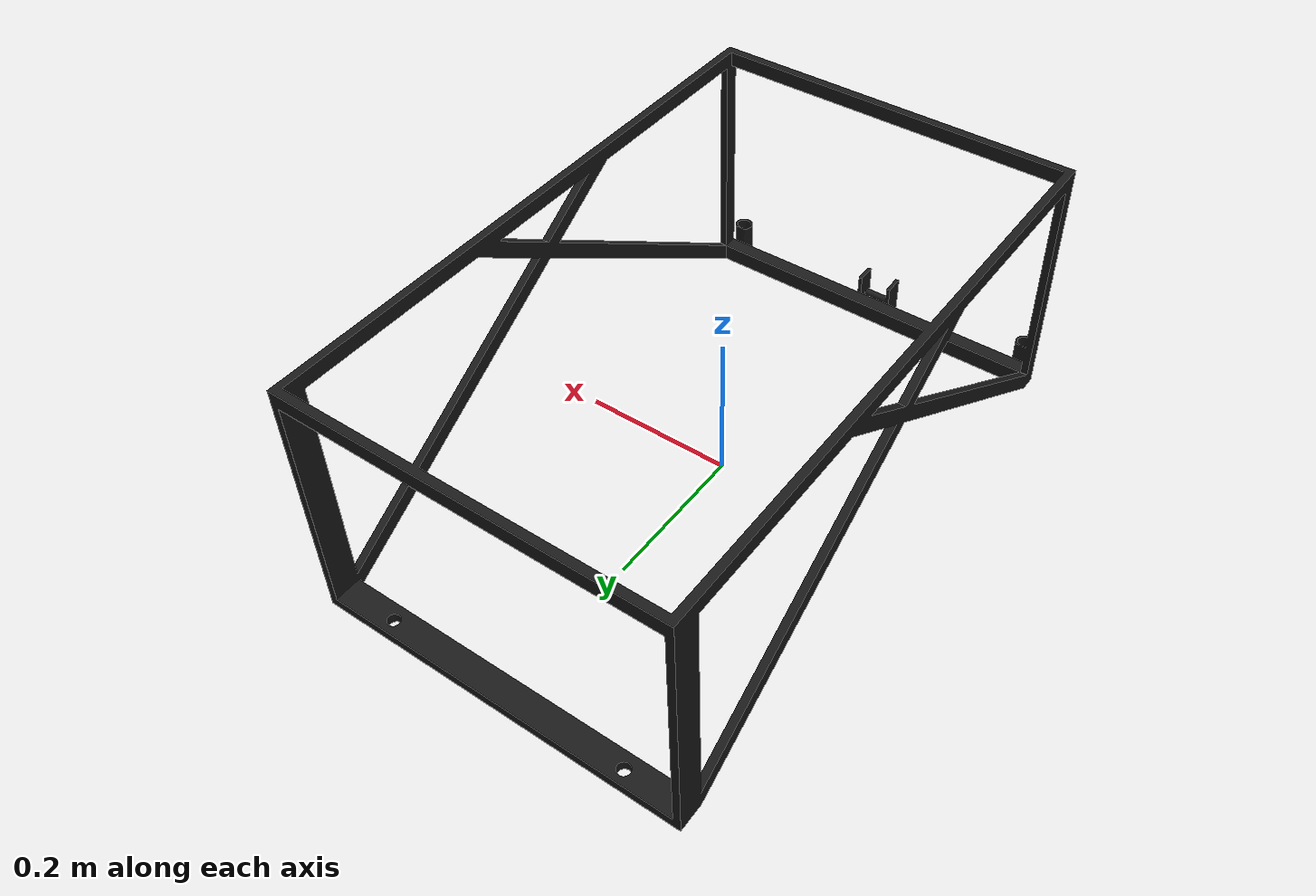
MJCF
<mujoco model="Cart_outer_skeleton">
  <default>
    <default class="visual">
      <geom group="2" type="mesh" contype="0" conaffinity="0"/>
    </default>
    <default class="collision">
      <geom group="3" type="mesh"/>
    </default>
  </default>
  <asset>
    <material name="Paint_-_Metallic_(Black)" specular="0.5" shininess="0.5" rgba="0.098039 0.098039 0.098039 1.0"/>
    <mesh file="Cart_outer_skeleton.obj"/>
    <mesh file="Cart_outer_skeleton_collision_0.obj"/>
    <mesh file="Cart_outer_skeleton_collision_1.obj"/>
    <mesh file="Cart_outer_skeleton_collision_2.obj"/>
    <mesh file="Cart_outer_skeleton_collision_3.obj"/>
    <mesh file="Cart_outer_skeleton_collision_4.obj"/>
    <mesh file="Cart_outer_skeleton_collision_5.obj"/>
    <mesh file="Cart_outer_skeleton_collision_6.obj"/>
    <mesh file="Cart_outer_skeleton_collision_7.obj"/>
    <mesh file="Cart_outer_skeleton_collision_8.obj"/>
    <mesh file="Cart_outer_skeleton_collision_9.obj"/>
    <mesh file="Cart_outer_skeleton_collision_10.obj"/>
    <mesh file="Cart_outer_skeleton_collision_11.obj"/>
    <mesh file="Cart_outer_skeleton_collision_12.obj"/>
    <mesh file="Cart_outer_skeleton_collision_13.obj"/>
    <mesh file="Cart_outer_skeleton_collision_14.obj"/>
    <mesh file="Cart_outer_skeleton_collision_15.obj"/>
    <mesh file="Cart_outer_skeleton_collision_16.obj"/>
    <mesh file="Cart_outer_skeleton_collision_17.obj"/>
    <mesh file="Cart_outer_skeleton_collision_18.obj"/>
    <mesh file="Cart_outer_skeleton_collision_19.obj"/>
    <mesh file="Cart_outer_skeleton_collision_20.obj"/>
    <mesh file="Cart_outer_skeleton_collision_21.obj"/>
    <mesh file="Cart_outer_skeleton_collision_22.obj"/>
  </asset>
  <worldbody>
    <body name="Cart_outer_skeleton">
      <geom material="Paint_-_Metallic_(Black)" mesh="Cart_outer_skeleton" class="visual"/>
      <geom mesh="Cart_outer_skeleton_collision_0" rgba="0.9606576166024481 0.6706871652011144 0.477875922223143 1" class="collision"/>
      <geom mesh="Cart_outer_skeleton_collision_1" rgba="0.7448995111811578 0.7642547853997227 0.3764663658189453 1" class="collision"/>
      <geom mesh="Cart_outer_skeleton_collision_2" rgba="0.11524275299974873 0.03213749720762693 0.8523296041903384 1" class="collision"/>
      <geom mesh="Cart_outer_skeleton_collision_3" rgba="0.6431130006667075 0.9563905401994303 0.42860224824704696 1" class="collision"/>
      <geom mesh="Cart_outer_skeleton_collision_4" rgba="0.46286660817214653 0.6760999527717191 0.7045527130437969 1" class="collision"/>
      <geom mesh="Cart_outer_skeleton_collision_5" rgba="0.5737106338979372 0.32901049227790624 0.6236029607192148 1" class="collision"/>
      <geom mesh="Cart_outer_skeleton_collision_6" rgba="0.41965086309847477 0.360599682856239 0.9368959363563317 1" class="collision"/>
      <geom mesh="Cart_outer_skeleton_collision_7" rgba="0.024659960437662498 0.014719428183994965 0.83790371217123 1" class="collision"/>
      <geom mesh="Cart_outer_skeleton_collision_8" rgba="0.8486566842878059 0.4828290221352466 0.6352071779435086 1" class="collision"/>
      <geom mesh="Cart_outer_skeleton_collision_9" rgba="0.20146400523978059 0.7550461056404485 0.9639912260098263 1" class="collision"/>
      <geom mesh="Cart_outer_skeleton_collision_10" rgba="0.2041839902488244 0.642548059175931 0.29408423648258386 1" class="collision"/>
      <geom mesh="Cart_outer_skeleton_collision_11" rgba="0.6192979779011546 0.5501630803615056 0.8773099915719056 1" class="collision"/>
      <geom mesh="Cart_outer_skeleton_collision_12" rgba="0.3831137004346882 0.2569146072613303 0.8754755513020959 1" class="collision"/>
      <geom mesh="Cart_outer_skeleton_collision_13" rgba="0.8312088990157968 0.820028704135199 0.8273077865643477 1" class="collision"/>
      <geom mesh="Cart_outer_skeleton_collision_14" rgba="0.3809508826866861 0.03573101382877697 0.9443397158903866 1" class="collision"/>
      <geom mesh="Cart_outer_skeleton_collision_15" rgba="0.0856622926524464 0.817143401722767 0.026438016324117797 1" class="collision"/>
      <geom mesh="Cart_outer_skeleton_collision_16" rgba="0.21372428276848932 0.6827082844075419 0.36622229864352085 1" class="collision"/>
      <geom mesh="Cart_outer_skeleton_collision_17" rgba="0.20774328221594673 0.3558820095372933 0.5944703977993575 1" class="collision"/>
      <geom mesh="Cart_outer_skeleton_collision_18" rgba="0.6706507390752402 0.45002611123324643 0.7642506011777106 1" class="collision"/>
      <geom mesh="Cart_outer_skeleton_collision_19" rgba="0.8089005402932279 0.14713579540514754 0.32665422457570226 1" class="collision"/>
      <geom mesh="Cart_outer_skeleton_collision_20" rgba="0.9233589504345677 0.17477127952350124 0.9901469498616216 1" class="collision"/>
      <geom mesh="Cart_outer_skeleton_collision_21" rgba="0.4797924698810574 0.43813947219040683 0.055059456445975874 1" class="collision"/>
      <geom mesh="Cart_outer_skeleton_collision_22" rgba="0.4435052720143309 0.45473222477805175 0.7362266914879616 1" class="collision"/>
    </body>
  </worldbody>
</mujoco>
